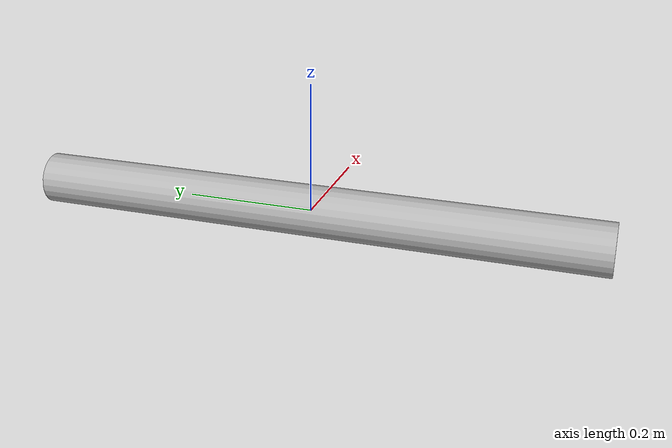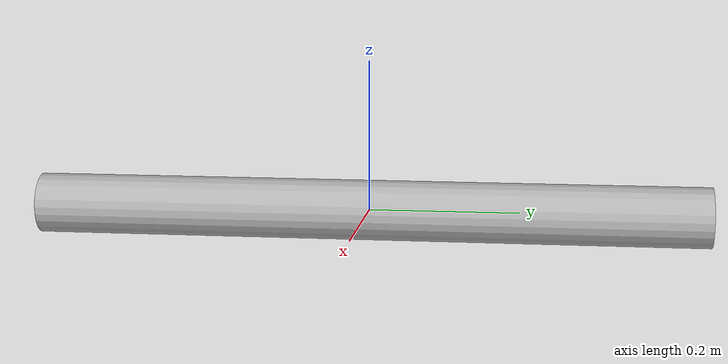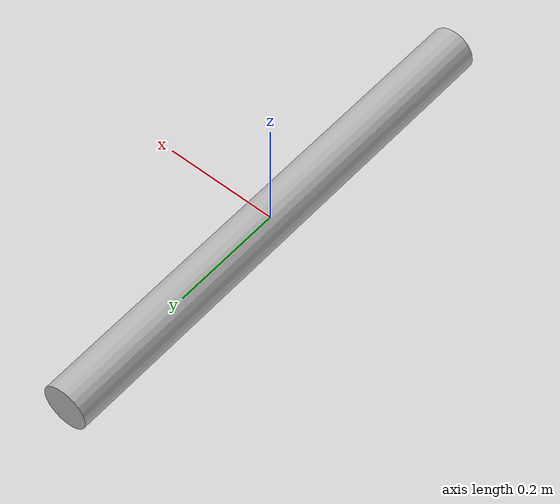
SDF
<?xml version='1.0'?>
<sdf version='1.7'>
  <model name='testcylinder'>
    <link name='link'>
      <pose>0 0 0 1.57 0 0</pose>
      <visual name='visual'>
        <geometry>
          <cylinder>
            <radius>0.04</radius>
            <length>0.9</length>
          </cylinder>
        </geometry>
        <material>
          <script>
	          <uri>/root/workspace/self_gazebo_models/testcylinder/materials/scripts</uri>
            <uri>/root/workspace/self_gazebo_models/testcylinder/materials/textures</uri>
            <name>TestZone/testcylinder</name>
          </script>
        </material>
      </visual>
      <collision name='collision'>
        <geometry>
          <cylinder>
            <radius>0.04</radius>
            <length>0.9</length>
          </cylinder>
        </geometry>
      </collision>
    </link>
    <static>1</static>
    <allow_auto_disable>1</allow_auto_disable>
  </model>
</sdf>
